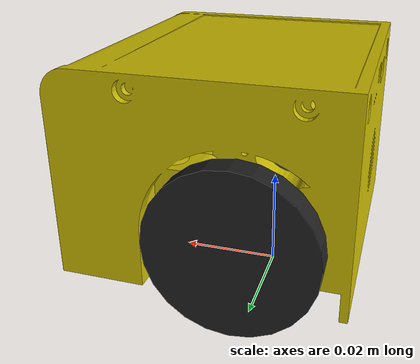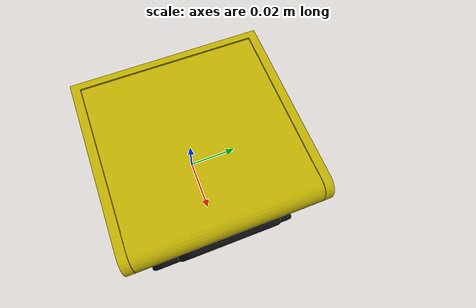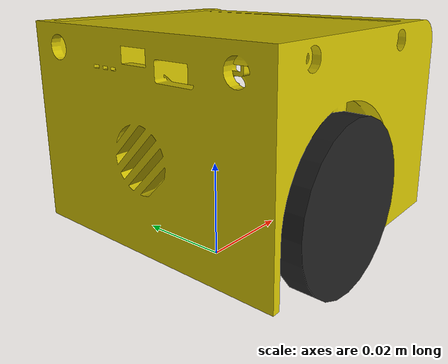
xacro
<?xml version="1.0" ?>
<robot name="edubot" xmlns:xacro="http://ros.org/wiki/xacro">
  <xacro:include filename="$(find edubot_description)/urdf/common_properties.xacro"/>
  <xacro:include filename="$(find edubot_description)/urdf/edubot.gazebo.xacro"/>

  <link name="base_footprint"/>

  <joint name="base_joint" type="fixed">
    <parent link="base_footprint"/>
    <child link="base_link"/>
    <origin xyz="0.0 0.0 0.002" rpy="0 0 0"/>
  </joint>

  <link name="base_link">
    <visual>
      <origin xyz="0 0.0005 0.0" rpy="0 0 0"/>
      <geometry>
        <mesh filename="package://edubot_description/meshes/bases/edubot_base.dae" scale="0.001 0.001 0.001"/>
      </geometry>
    </visual>

    <collision>
      <origin xyz="0.009 0 0.028" rpy="0 0 0"/>
      <geometry>
        <box size="0.053 0.050 0.04"/>
      </geometry>
    </collision>

    <inertial>
      <origin xyz="0 0 0" rpy="0 0 0"/>
      <mass value="8.2573504e-01"/>
      <inertia ixx="2.2124416e-03" ixy="-1.2294101e-05" ixz="3.4938785e-05"
               iyy="2.1193702e-03" iyz="-5.0120904e-06"
               izz="2.0064271e-03" />
    </inertial>
  </link>

  <joint name="wheel_left_joint" type="continuous">
    <parent link="base_link"/>
    <child link="wheel_left_link"/>
    <origin xyz="0.001 0.028 0.0165" rpy="-1.57 0 0"/>
    <axis xyz="0 0 1"/>
  </joint>

  <link name="wheel_left_link">
    <visual>
      <origin xyz="0 0 0" rpy="0 0 0"/>
      <geometry>
        <cylinder length="0.005" radius="0.016"/>
      </geometry>
      <material name="dark"/>
    </visual>

    <collision>
      <origin xyz="0 0 0" rpy="0 0 0"/>
      <geometry>
        <cylinder length="0.005" radius="0.016"/>
      </geometry>
    </collision>

    <inertial>
      <origin xyz="0 0 0" />
      <mass value="2.3498940e-02" />
      <inertia ixx="1.1175580e-05" ixy="-4.2369783e-11" ixz="-5.9381719e-09"
               iyy="1.1192413e-05" iyz="-1.4400107e-11"
               izz="2.0712558e-05" />
      </inertial>
  </link>

  <joint name="wheel_right_joint" type="continuous">
    <parent link="base_link"/>
    <child link="wheel_right_link"/>
    <origin xyz="0.001 -0.028 0.0165" rpy="-1.57 0 0"/>
    <axis xyz="0 0 1"/>
  </joint>

  <link name="wheel_right_link">
    <visual>
      <origin xyz="0 0 0" rpy="0 0 0"/>
      <geometry>
        <cylinder length="0.005" radius="0.016"/>
      </geometry>
      <material name="dark"/>
    </visual>

    <collision>
      <origin xyz="0 0 0" rpy="0 0 0"/>
      <geometry>
        <cylinder length="0.005" radius="0.016"/>
      </geometry>
    </collision>

    <inertial>
      <origin xyz="0 0 0" />
      <mass value="2.3498940e-02" />
      <inertia ixx="1.1175580e-05" ixy="-4.2369783e-11" ixz="-5.9381719e-09"
               iyy="1.1192413e-05" iyz="-1.4400107e-11"
               izz="2.0712558e-05" />
      </inertial>
  </link>

  <joint name="caster_back_joint" type="fixed">
    <parent link="base_link"/>
    <child link="caster_back_link"/>
    <origin xyz="0.03 0 0.0029" rpy="-1.57 0 0"/>
  </joint>

  <link name="caster_back_link">
    <collision>
      <origin xyz="0 0.0 0" rpy="0 0 0"/>
      <geometry>
        <box size="0.01 0.0043 0.01"/>
      </geometry>
    </collision>

    <inertial>
      <origin xyz="0 0 0" />
      <mass value="0.3" />
      <inertia ixx="0.001" ixy="0.0" ixz="0.0"
               iyy="0.001" iyz="0.0"
               izz="0.001" />
    </inertial>
  </link>

  <joint name="imu_joint" type="fixed">
    <parent link="base_link"/>
    <child link="imu_link"/>
    <origin xyz="0 0 0" rpy="0 0 0"/>
  </joint>

  <link name="imu_link"/>

  <joint name="tof_left_joint" type="fixed">
    <parent link="base_link"/>
    <child link="tof_left_link"/>
    <origin xyz="0.036 0.020 0.033" rpy="0 -0.1 0"/>
  </joint>

  <link name="tof_left_link">
  </link>

  <joint name="tof_right_joint" type="fixed">
    <parent link="base_link"/>
    <child link="tof_right_link"/>
    <origin xyz="0.036 -0.020 0.033" rpy="0 -0.1 0"/>
  </joint>

  <link name="tof_right_link">
  </link>

  <joint name="scan_joint" type="fixed">
    <parent link="base_link"/>
    <child link="base_scan"/>
    <origin xyz="0.036 0 0.05" rpy="0 0 0"/>
  </joint>

  <link name="base_scan">
  </link>

</robot>
